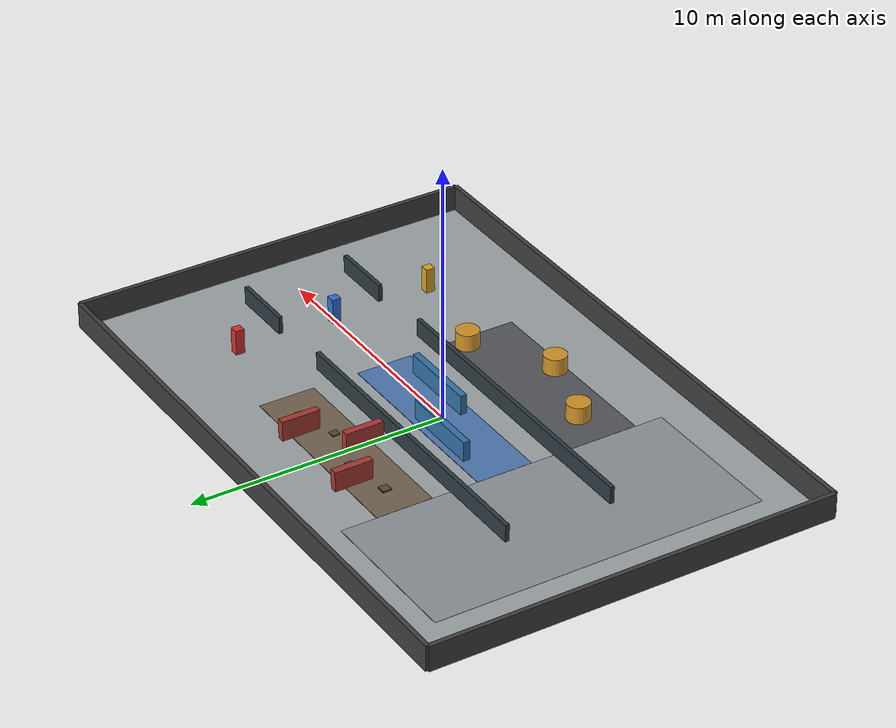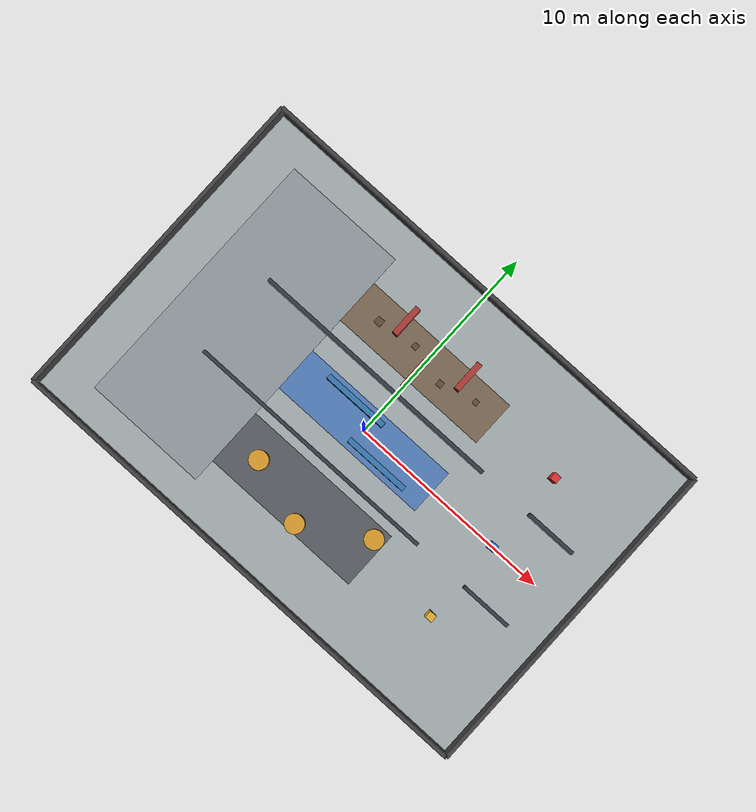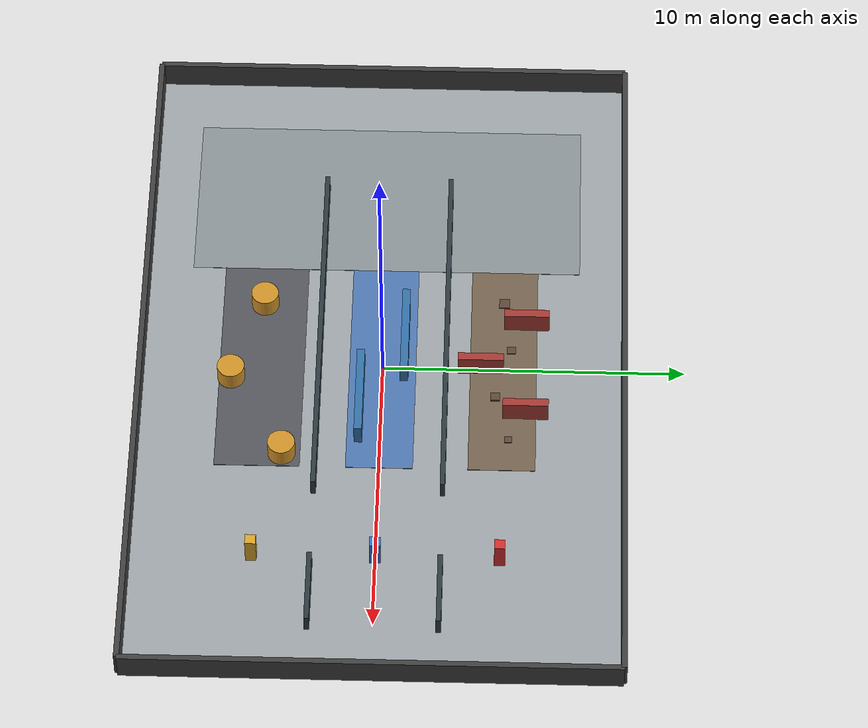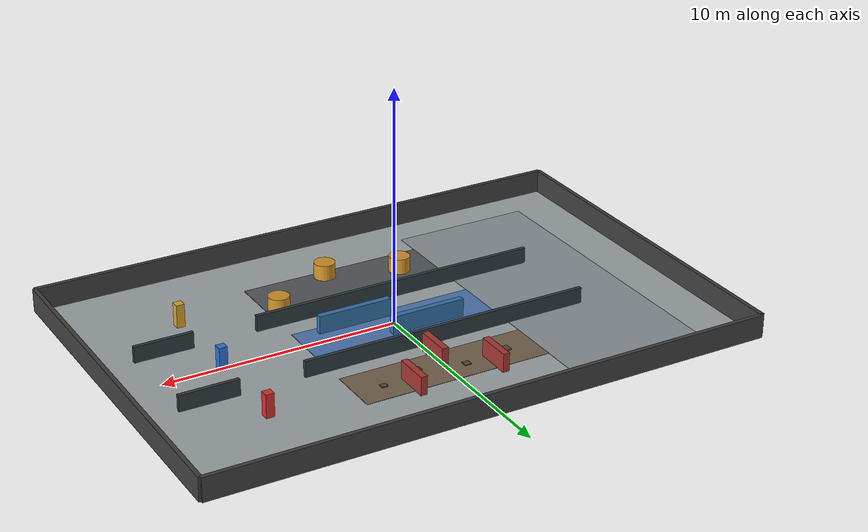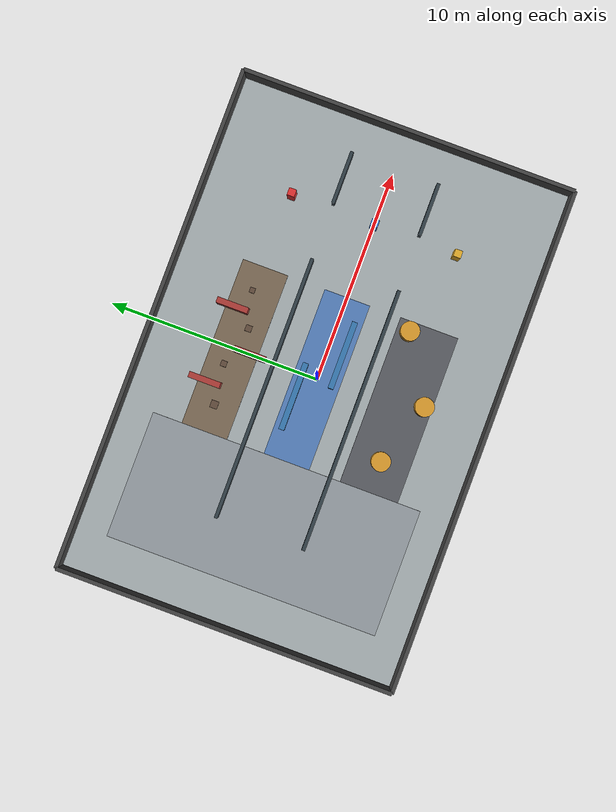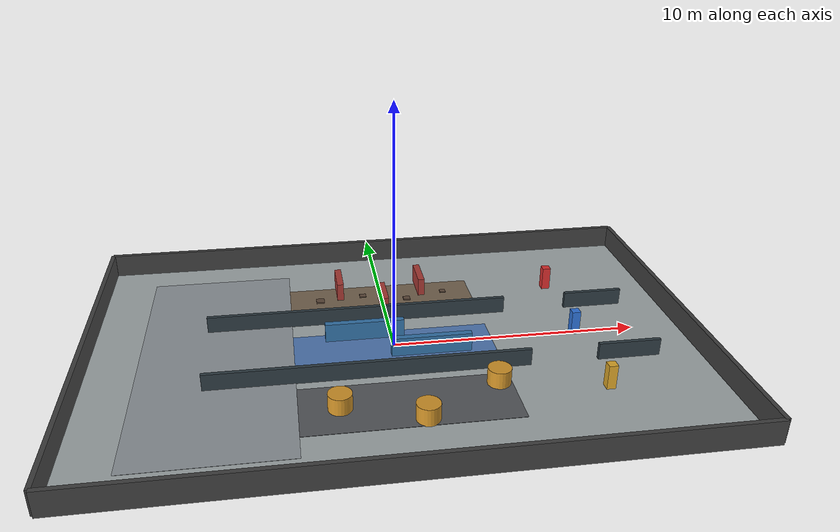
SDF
<?xml version="1.0" ?>
<sdf version="1.8">
  <world name="multi_terrain_robot_diff">

    <physics name="4ms" type="ignored">
      <max_step_size>0.004</max_step_size>
      <real_time_factor>1</real_time_factor>
    </physics>

    <plugin filename="ignition-gazebo-physics-system" name="ignition::gazebo::systems::Physics"/>
    <plugin filename="ignition-gazebo-user-commands-system" name="ignition::gazebo::systems::UserCommands"/>
    <plugin filename="ignition-gazebo-scene-broadcaster-system" name="ignition::gazebo::systems::SceneBroadcaster"/>
    <plugin filename="ignition-gazebo-sensors-system" name="ignition::gazebo::systems::Sensors">
      <render_engine>ogre2</render_engine>
    </plugin>
    <plugin filename="ignition-gazebo-contact-system" name="ignition::gazebo::systems::Contact"/>
    <plugin filename="ignition-gazebo-imu-system" name="ignition::gazebo::systems::Imu"/>

    <light type="directional" name="sun">
      <cast_shadows>true</cast_shadows>
      <pose>0 0 12 0 0 0</pose>
      <diffuse>0.85 0.85 0.8 1</diffuse>
      <specular>0.25 0.25 0.25 1</specular>
      <direction>-0.4 0.25 -0.9</direction>
    </light>

    <model name="base_floor">
      <static>true</static>
      <link name="link">
        <collision name="collision">
          <geometry><box><size>24 16 0.02</size></box></geometry>
          <surface><friction><ode><mu>1.0</mu><mu2>1.0</mu2></ode></friction></surface>
        </collision>
        <visual name="visual">
          <geometry><box><size>24 16 0.02</size></box></geometry>
          <material><ambient>0.62 0.65 0.66 1</ambient><diffuse>0.62 0.65 0.66 1</diffuse></material>
        </visual>
      </link>
    </model>

    <!-- Terrain labels are visual + physics hints today; a future terrain
         costmap layer can consume the same named regions. -->
    <model name="terrain_flat_concrete">
      <static>true</static>
      <pose>-7 0 0.021 0 0 0</pose>
      <link name="link">
        <collision name="collision"><geometry><box><size>6 13 0.01</size></box></geometry>
          <surface><friction><ode><mu>1.2</mu><mu2>1.2</mu2></ode></friction></surface></collision>
        <visual name="visual"><geometry><box><size>6 13 0.01</size></box></geometry>
          <material><ambient>0.55 0.58 0.60 1</ambient><diffuse>0.55 0.58 0.60 1</diffuse></material></visual>
      </link>
    </model>

    <model name="terrain_gravel_rough">
      <static>true</static>
      <pose>0 4 0.024 0 0 0</pose>
      <link name="link">
        <collision name="collision"><geometry><box><size>8 2.2 0.016</size></box></geometry>
          <surface><friction><ode><mu>0.9</mu><mu2>0.9</mu2></ode></friction></surface></collision>
        <visual name="visual"><geometry><box><size>8 2.2 0.016</size></box></geometry>
          <material><ambient>0.46 0.39 0.31 1</ambient><diffuse>0.46 0.39 0.31 1</diffuse></material></visual>
      </link>
    </model>

    <model name="terrain_low_friction_tile">
      <static>true</static>
      <pose>0 0 0.024 0 0 0</pose>
      <link name="link">
        <collision name="collision"><geometry><box><size>8 2.2 0.016</size></box></geometry>
          <surface><friction><ode><mu>0.25</mu><mu2>0.25</mu2></ode></friction></surface></collision>
        <visual name="visual"><geometry><box><size>8 2.2 0.016</size></box></geometry>
          <material><ambient>0.31 0.47 0.70 1</ambient><diffuse>0.31 0.47 0.70 1</diffuse></material></visual>
      </link>
    </model>

    <model name="terrain_wide_asphalt">
      <static>true</static>
      <pose>0 -4 0.024 0 0 0</pose>
      <link name="link">
        <collision name="collision"><geometry><box><size>8 2.8 0.016</size></box></geometry>
          <surface><friction><ode><mu>1.1</mu><mu2>1.1</mu2></ode></friction></surface></collision>
        <visual name="visual"><geometry><box><size>8 2.8 0.016</size></box></geometry>
          <material><ambient>0.33 0.34 0.36 1</ambient><diffuse>0.33 0.34 0.36 1</diffuse></material></visual>
      </link>
    </model>

    <!-- Outer boundary. -->
    <model name="wall_north"><static>true</static><pose>0 8 0.5 0 0 0</pose><link name="link"><collision name="c"><geometry><box><size>24 0.18 1</size></box></geometry></collision><visual name="v"><geometry><box><size>24 0.18 1</size></box></geometry><material><ambient>0.25 0.25 0.25 1</ambient><diffuse>0.25 0.25 0.25 1</diffuse></material></visual></link></model>
    <model name="wall_south"><static>true</static><pose>0 -8 0.5 0 0 0</pose><link name="link"><collision name="c"><geometry><box><size>24 0.18 1</size></box></geometry></collision><visual name="v"><geometry><box><size>24 0.18 1</size></box></geometry><material><ambient>0.25 0.25 0.25 1</ambient><diffuse>0.25 0.25 0.25 1</diffuse></material></visual></link></model>
    <model name="wall_west"><static>true</static><pose>-12 0 0.5 0 0 0</pose><link name="link"><collision name="c"><geometry><box><size>0.18 16 1</size></box></geometry></collision><visual name="v"><geometry><box><size>0.18 16 1</size></box></geometry><material><ambient>0.25 0.25 0.25 1</ambient><diffuse>0.25 0.25 0.25 1</diffuse></material></visual></link></model>
    <model name="wall_east"><static>true</static><pose>12 0 0.5 0 0 0</pose><link name="link"><collision name="c"><geometry><box><size>0.18 16 1</size></box></geometry></collision><visual name="v"><geometry><box><size>0.18 16 1</size></box></geometry><material><ambient>0.25 0.25 0.25 1</ambient><diffuse>0.25 0.25 0.25 1</diffuse></material></visual></link></model>

    <!-- Lane separators with west/east hub openings. -->
    <model name="sep_upper_left"><static>true</static><pose>-1.2 2.1 0.35 0 0 0</pose><link name="link"><collision name="c"><geometry><box><size>12.5 0.16 0.7</size></box></geometry></collision><visual name="v"><geometry><box><size>12.5 0.16 0.7</size></box></geometry><material><ambient>0.18 0.23 0.26 1</ambient><diffuse>0.18 0.23 0.26 1</diffuse></material></visual></link></model>
    <model name="sep_upper_right"><static>true</static><pose>9.0 2.1 0.35 0 0 0</pose><link name="link"><collision name="c"><geometry><box><size>2.5 0.16 0.7</size></box></geometry></collision><visual name="v"><geometry><box><size>2.5 0.16 0.7</size></box></geometry><material><ambient>0.18 0.23 0.26 1</ambient><diffuse>0.18 0.23 0.26 1</diffuse></material></visual></link></model>
    <model name="sep_lower_left"><static>true</static><pose>-1.2 -2.1 0.35 0 0 0</pose><link name="link"><collision name="c"><geometry><box><size>12.5 0.16 0.7</size></box></geometry></collision><visual name="v"><geometry><box><size>12.5 0.16 0.7</size></box></geometry><material><ambient>0.18 0.23 0.26 1</ambient><diffuse>0.18 0.23 0.26 1</diffuse></material></visual></link></model>
    <model name="sep_lower_right"><static>true</static><pose>9.0 -2.1 0.35 0 0 0</pose><link name="link"><collision name="c"><geometry><box><size>2.5 0.16 0.7</size></box></geometry></collision><visual name="v"><geometry><box><size>2.5 0.16 0.7</size></box></geometry><material><ambient>0.18 0.23 0.26 1</ambient><diffuse>0.18 0.23 0.26 1</diffuse></material></visual></link></model>

    <!-- Upper lane: tight chicane. Diff can spin in place; ackermann should struggle. -->
    <model name="diff_chicane_gate_a"><static>true</static><pose>-1.8 4.75 0.4 0 0 0</pose><link name="link"><collision name="c"><geometry><box><size>0.28 1.5 0.8</size></box></geometry></collision><visual name="v"><geometry><box><size>0.28 1.5 0.8</size></box></geometry><material><ambient>0.65 0.22 0.20 1</ambient><diffuse>0.65 0.22 0.20 1</diffuse></material></visual></link></model>
    <model name="diff_chicane_gate_b"><static>true</static><pose>0.0 3.25 0.4 0 0 0</pose><link name="link"><collision name="c"><geometry><box><size>0.28 1.5 0.8</size></box></geometry></collision><visual name="v"><geometry><box><size>0.28 1.5 0.8</size></box></geometry><material><ambient>0.65 0.22 0.20 1</ambient><diffuse>0.65 0.22 0.20 1</diffuse></material></visual></link></model>
    <model name="diff_chicane_gate_c"><static>true</static><pose>1.8 4.75 0.4 0 0 0</pose><link name="link"><collision name="c"><geometry><box><size>0.28 1.5 0.8</size></box></geometry></collision><visual name="v"><geometry><box><size>0.28 1.5 0.8</size></box></geometry><material><ambient>0.65 0.22 0.20 1</ambient><diffuse>0.65 0.22 0.20 1</diffuse></material></visual></link></model>

    <!-- Middle lane: lateral offset gates. Mecanum can correct sideways with less turning. -->
    <model name="mecanum_offset_gate_north"><static>true</static><pose>-1.1 0.72 0.4 0 0 0</pose><link name="link"><collision name="c"><geometry><box><size>3.2 0.26 0.8</size></box></geometry></collision><visual name="v"><geometry><box><size>3.2 0.26 0.8</size></box></geometry><material><ambient>0.20 0.45 0.66 1</ambient><diffuse>0.20 0.45 0.66 1</diffuse></material></visual></link></model>
    <model name="mecanum_offset_gate_south"><static>true</static><pose>1.4 -0.72 0.4 0 0 0</pose><link name="link"><collision name="c"><geometry><box><size>3.2 0.26 0.8</size></box></geometry></collision><visual name="v"><geometry><box><size>3.2 0.26 0.8</size></box></geometry><material><ambient>0.20 0.45 0.66 1</ambient><diffuse>0.20 0.45 0.66 1</diffuse></material></visual></link></model>

    <!-- Lower lane: wide slalom sized for Ackermann's turning radius. -->
    <model name="ackermann_wide_bollard_a"><static>true</static><pose>-2.5 -4.0 0.35 0 0 0</pose><link name="link"><collision name="c"><geometry><cylinder><radius>0.45</radius><length>0.7</length></cylinder></geometry></collision><visual name="v"><geometry><cylinder><radius>0.45</radius><length>0.7</length></cylinder></geometry><material><ambient>0.82 0.58 0.16 1</ambient><diffuse>0.82 0.58 0.16 1</diffuse></material></visual></link></model>
    <model name="ackermann_wide_bollard_b"><static>true</static><pose>0.5 -5.0 0.35 0 0 0</pose><link name="link"><collision name="c"><geometry><cylinder><radius>0.45</radius><length>0.7</length></cylinder></geometry></collision><visual name="v"><geometry><cylinder><radius>0.45</radius><length>0.7</length></cylinder></geometry><material><ambient>0.82 0.58 0.16 1</ambient><diffuse>0.82 0.58 0.16 1</diffuse></material></visual></link></model>
    <model name="ackermann_wide_bollard_c"><static>true</static><pose>3.5 -3.2 0.35 0 0 0</pose><link name="link"><collision name="c"><geometry><cylinder><radius>0.45</radius><length>0.7</length></cylinder></geometry></collision><visual name="v"><geometry><cylinder><radius>0.45</radius><length>0.7</length></cylinder></geometry><material><ambient>0.82 0.58 0.16 1</ambient><diffuse>0.82 0.58 0.16 1</diffuse></material></visual></link></model>

    <!-- Small roughness samples visible to lidar/depth but low enough for most wheeled bases. -->
    <model name="rough_marker_bumps">
      <static>true</static>
      <link name="bump_a"><pose>-2.7 4.0 0.055 0 0 0</pose><collision name="c"><geometry><box><size>0.35 0.35 0.07</size></box></geometry></collision><visual name="v"><geometry><box><size>0.35 0.35 0.07</size></box></geometry><material><ambient>0.36 0.28 0.22 1</ambient><diffuse>0.36 0.28 0.22 1</diffuse></material></visual></link>
      <link name="bump_b"><pose>-0.8 4.25 0.045 0 0 0</pose><collision name="c"><geometry><box><size>0.28 0.28 0.05</size></box></geometry></collision><visual name="v"><geometry><box><size>0.28 0.28 0.05</size></box></geometry><material><ambient>0.36 0.28 0.22 1</ambient><diffuse>0.36 0.28 0.22 1</diffuse></material></visual></link>
      <link name="bump_c"><pose>1.1 3.75 0.05 0 0 0</pose><collision name="c"><geometry><box><size>0.3 0.3 0.06</size></box></geometry></collision><visual name="v"><geometry><box><size>0.3 0.3 0.06</size></box></geometry><material><ambient>0.36 0.28 0.22 1</ambient><diffuse>0.36 0.28 0.22 1</diffuse></material></visual></link>
      <link name="bump_d"><pose>2.8 4.2 0.045 0 0 0</pose><collision name="c"><geometry><box><size>0.25 0.25 0.05</size></box></geometry></collision><visual name="v"><geometry><box><size>0.25 0.25 0.05</size></box></geometry><material><ambient>0.36 0.28 0.22 1</ambient><diffuse>0.36 0.28 0.22 1</diffuse></material></visual></link>
    </model>

    <!-- Landmarks at lane exits help SLAM disambiguate the repeated lanes. -->
    <model name="exit_marker_diff_lane"><static>true</static><pose>7.5 4.0 0.5 0 0 0</pose><link name="link"><collision name="c"><geometry><box><size>0.35 0.35 1.0</size></box></geometry></collision><visual name="v"><geometry><box><size>0.35 0.35 1.0</size></box></geometry><material><ambient>0.85 0.18 0.18 1</ambient><diffuse>0.85 0.18 0.18 1</diffuse></material></visual></link></model>
    <model name="exit_marker_mecanum_lane"><static>true</static><pose>7.5 0.0 0.5 0 0 0</pose><link name="link"><collision name="c"><geometry><box><size>0.35 0.35 1.0</size></box></geometry></collision><visual name="v"><geometry><box><size>0.35 0.35 1.0</size></box></geometry><material><ambient>0.18 0.45 0.85 1</ambient><diffuse>0.18 0.45 0.85 1</diffuse></material></visual></link></model>
    <model name="exit_marker_ackermann_lane"><static>true</static><pose>7.5 -4.0 0.5 0 0 0</pose><link name="link"><collision name="c"><geometry><box><size>0.35 0.35 1.0</size></box></geometry></collision><visual name="v"><geometry><box><size>0.35 0.35 1.0</size></box></geometry><material><ambient>0.86 0.65 0.16 1</ambient><diffuse>0.86 0.65 0.16 1</diffuse></material></visual></link></model>
  </world>
</sdf>
